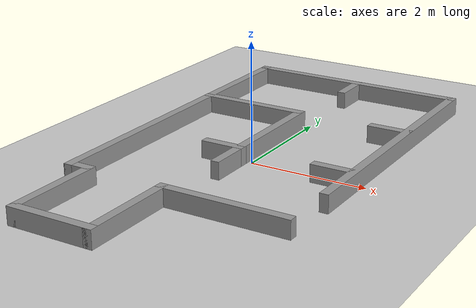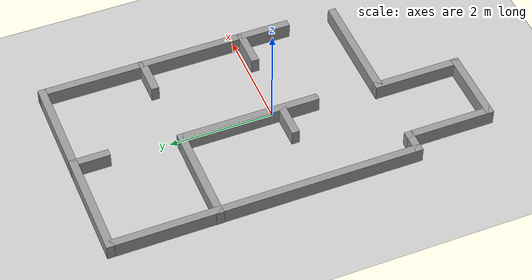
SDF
<sdf version="1.4">
  <world name="default">

    <scene>
      <ambient>0.4 0.4 0.4 1</ambient>
      <background>0.7 0.7 0.7 1</background>
      <shadows>true</shadows>
    </scene>

    <!-- A global light source -->
    <include>
      <uri>model://sun</uri>
    </include>

    <!-- A ground plane -->
    <include>
      <uri>model://ground_plane</uri>
    </include>

    <!-- maze -->
    <include>
      <uri>model://enclosed</uri>
    </include>

    <physics type="ode">
      <real_time_update_rate>1000.0</real_time_update_rate>
      <max_step_size>0.001</max_step_size>
      <real_time_factor>1</real_time_factor>
      <ode>
        <solver>
          <type>quick</type>
          <iters>150</iters>
          <precon_iters>0</precon_iters>
          <sor>1.400000</sor>
          <use_dynamic_moi_rescaling>1</use_dynamic_moi_rescaling>
        </solver>
        <constraints>
          <cfm>0.00001</cfm>
          <erp>0.2</erp>
          <contact_max_correcting_vel>2000.000000</contact_max_correcting_vel>
          <contact_surface_layer>0.01000</contact_surface_layer>
        </constraints>
      </ode>
    </physics>
  </world>

</sdf>

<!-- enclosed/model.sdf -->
<sdf version='1.6'>
  <model name='enclosed'>
    <pose frame=''>-0.0675 0.1065 0 0 -0 0</pose>
    <link name='Wall_0'>
      <collision name='Wall_0_Collision'>
        <geometry>
          <box>
            <size>6 0.15 0.3</size>
          </box>
        </geometry>
        <pose frame=''>0 0 0.15 0 -0 0</pose>
      </collision>
      <visual name='Wall_0_Visual'>
        <pose frame=''>0 0 0.15 0 -0 0</pose>
        <geometry>
          <box>
            <size>6 0.15 0.3</size>
          </box>
        </geometry>
        <material>
          <script>
            <uri>file://media/materials/scripts/gazebo.material</uri>
            <name>Gazebo/Grey</name>
          </script>
          <ambient>1 1 1 1</ambient>
        </material>
        <meta>
          <layer>0</layer>
        </meta>
      </visual>
      <pose frame=''>-1.9235 0.7995 0 0 -0 -1.5708</pose>
    </link>
    <link name='Wall_1'>
      <collision name='Wall_1_Collision'>
        <geometry>
          <box>
            <size>0.5 0.15 0.3</size>
          </box>
        </geometry>
        <pose frame=''>0 0 0.15 0 -0 0</pose>
      </collision>
      <visual name='Wall_1_Visual'>
        <pose frame=''>0 0 0.15 0 -0 0</pose>
        <geometry>
          <box>
            <size>0.5 0.15 0.3</size>
          </box>
        </geometry>
        <material>
          <script>
            <uri>file://media/materials/scripts/gazebo.material</uri>
            <name>Gazebo/Grey</name>
          </script>
          <ambient>1 1 1 1</ambient>
        </material>
        <meta>
          <layer>0</layer>
        </meta>
      </visual>
      <pose frame=''>-1.7485 -2.1255 0 0 -0 0</pose>
    </link>
    <link name='Wall_12'>
      <collision name='Wall_12_Collision'>
        <geometry>
          <box>
            <size>4 0.15 0.3</size>
          </box>
        </geometry>
        <pose frame=''>0 0 0.15 0 -0 0</pose>
      </collision>
      <visual name='Wall_12_Visual'>
        <pose frame=''>0 0 0.15 0 -0 0</pose>
        <geometry>
          <box>
            <size>4 0.15 0.3</size>
          </box>
        </geometry>
        <material>
          <script>
            <uri>file://media/materials/scripts/gazebo.material</uri>
            <name>Gazebo/Grey</name>
          </script>
          <ambient>1 1 1 1</ambient>
        </material>
        <meta>
          <layer>0</layer>
        </meta>
      </visual>
      <pose frame=''>0.0015 3.7245 0 0 -0 0</pose>
    </link>
    <link name='Wall_13'>
      <collision name='Wall_13_Collision'>
        <geometry>
          <box>
            <size>5 0.15 0.3</size>
          </box>
        </geometry>
        <pose frame=''>0 0 0.15 0 -0 0</pose>
      </collision>
      <visual name='Wall_13_Visual'>
        <pose frame=''>0 0 0.15 0 -0 0</pose>
        <geometry>
          <box>
            <size>5 0.15 0.3</size>
          </box>
        </geometry>
        <material>
          <script>
            <uri>file://media/materials/scripts/gazebo.material</uri>
            <name>Gazebo/Grey</name>
          </script>
          <ambient>1 1 1 1</ambient>
        </material>
        <meta>
          <layer>0</layer>
        </meta>
      </visual>
      <pose frame=''>1.9265 1.2995 0 0 -0 -1.5708</pose>
    </link>
    <link name='Wall_15'>
      <collision name='Wall_15_Collision'>
        <geometry>
          <box>
            <size>0.75 0.15 0.3</size>
          </box>
        </geometry>
        <pose frame=''>0 0 0.15 0 -0 0</pose>
      </collision>
      <visual name='Wall_15_Visual'>
        <pose frame=''>0 0 0.15 0 -0 0</pose>
        <geometry>
          <box>
            <size>0.75 0.15 0.3</size>
          </box>
        </geometry>
        <material>
          <script>
            <uri>file://media/materials/scripts/gazebo.material</uri>
            <name>Gazebo/Grey</name>
          </script>
          <ambient>1 1 1 1</ambient>
        </material>
        <meta>
          <layer>0</layer>
        </meta>
      </visual>
      <pose frame=''>0.0655 3.4255 0 0 -0 -1.5708</pose>
    </link>
    <link name='Wall_19'>
      <collision name='Wall_19_Collision'>
        <geometry>
          <box>
            <size>0.75 0.15 0.3</size>
          </box>
        </geometry>
        <pose frame=''>0 0 0.15 0 -0 0</pose>
      </collision>
      <visual name='Wall_19_Visual'>
        <pose frame=''>0 0 0.15 0 -0 0</pose>
        <geometry>
          <box>
            <size>0.75 0.15 0.3</size>
          </box>
        </geometry>
        <material>
          <script>
            <uri>file://media/materials/scripts/gazebo.material</uri>
            <name>Gazebo/Grey</name>
          </script>
          <ambient>1 1 1 1</ambient>
        </material>
        <meta>
          <layer>0</layer>
        </meta>
      </visual>
      <pose frame=''>1.6155 1.7545 0 0 -0 3.14159</pose>
    </link>
    <link name='Wall_21'>
      <collision name='Wall_21_Collision'>
        <geometry>
          <box>
            <size>0.75 0.15 0.3</size>
          </box>
        </geometry>
        <pose frame=''>0 0 0.15 0 -0 0</pose>
      </collision>
      <visual name='Wall_21_Visual'>
        <pose frame=''>0 0 0.15 0 -0 0</pose>
        <geometry>
          <box>
            <size>0.75 0.15 0.3</size>
          </box>
        </geometry>
        <material>
          <script>
            <uri>file://media/materials/scripts/gazebo.material</uri>
            <name>Gazebo/Grey</name>
          </script>
          <ambient>1 1 1 1</ambient>
        </material>
        <meta>
          <layer>0</layer>
        </meta>
      </visual>
      <pose frame=''>1.5955 -0.2375 0 0 -0 3.14159</pose>
    </link>
    <link name='Wall_23'>
      <collision name='Wall_23_Collision'>
        <geometry>
          <box>
            <size>2 0.15 0.3</size>
          </box>
        </geometry>
        <pose frame=''>0 0 0.15 0 -0 0</pose>
      </collision>
      <visual name='Wall_23_Visual'>
        <pose frame=''>0 0 0.15 0 -0 0</pose>
        <geometry>
          <box>
            <size>2 0.15 0.3</size>
          </box>
        </geometry>
        <material>
          <script>
            <uri>file://media/materials/scripts/gazebo.material</uri>
            <name>Gazebo/Grey</name>
          </script>
          <ambient>1 1 1 1</ambient>
        </material>
        <meta>
          <layer>0</layer>
        </meta>
      </visual>
      <pose frame=''>-1.0015 1.7135 0 0 -0 0</pose>
    </link>
    <link name='Wall_24'>
      <collision name='Wall_24_Collision'>
        <geometry>
          <box>
            <size>2.75 0.15 0.3</size>
          </box>
        </geometry>
        <pose frame=''>0 0 0.15 0 -0 0</pose>
      </collision>
      <visual name='Wall_24_Visual'>
        <pose frame=''>0 0 0.15 0 -0 0</pose>
        <geometry>
          <box>
            <size>2.75 0.15 0.3</size>
          </box>
        </geometry>
        <material>
          <script>
            <uri>file://media/materials/scripts/gazebo.material</uri>
            <name>Gazebo/Grey</name>
          </script>
          <ambient>1 1 1 1</ambient>
        </material>
        <meta>
          <layer>0</layer>
        </meta>
      </visual>
      <pose frame=''>-0.0765 0.4135 0 0 -0 -1.5708</pose>
    </link>
    <link name='Wall_26'>
      <collision name='Wall_26_Collision'>
        <geometry>
          <box>
            <size>0.75 0.15 0.3</size>
          </box>
        </geometry>
        <pose frame=''>0 0 0.15 0 -0 0</pose>
      </collision>
      <visual name='Wall_26_Visual'>
        <pose frame=''>0 0 0.15 0 -0 0</pose>
        <geometry>
          <box>
            <size>0.75 0.15 0.3</size>
          </box>
        </geometry>
        <material>
          <script>
            <uri>file://media/materials/scripts/gazebo.material</uri>
            <name>Gazebo/Grey</name>
          </script>
          <ambient>1 1 1 1</ambient>
        </material>
        <meta>
          <layer>0</layer>
        </meta>
      </visual>
      <pose frame=''>-0.3755 -0.2375 0 0 -0 3.14159</pose>
    </link>
    <link name='Wall_4'>
      <collision name='Wall_4_Collision'>
        <geometry>
          <box>
            <size>1.75 0.15 0.3</size>
          </box>
        </geometry>
        <pose frame=''>0 0 0.15 0 -0 0</pose>
      </collision>
      <visual name='Wall_4_Visual'>
        <pose frame=''>0 0 0.15 0 -0 0</pose>
        <geometry>
          <box>
            <size>1.75 0.15 0.3</size>
          </box>
        </geometry>
        <material>
          <script>
            <uri>file://media/materials/scripts/gazebo.material</uri>
            <name>Gazebo/Grey</name>
          </script>
          <ambient>1 1 1 1</ambient>
        </material>
        <meta>
          <layer>0</layer>
        </meta>
      </visual>
      <pose frame=''>-1.5735 -2.9255 0 0 -0 -1.5708</pose>
    </link>
    <link name='Wall_5'>
      <collision name='Wall_5_Collision'>
        <geometry>
          <box>
            <size>1.5 0.15 0.3</size>
          </box>
        </geometry>
        <pose frame=''>0 0 0.15 0 -0 0</pose>
      </collision>
      <visual name='Wall_5_Visual'>
        <pose frame=''>0 0 0.15 0 -0 0</pose>
        <geometry>
          <box>
            <size>1.5 0.15 0.3</size>
          </box>
        </geometry>
        <material>
          <script>
            <uri>file://media/materials/scripts/gazebo.material</uri>
            <name>Gazebo/Grey</name>
          </script>
          <ambient>1 1 1 1</ambient>
        </material>
        <meta>
          <layer>0</layer>
        </meta>
      </visual>
      <pose frame=''>-0.8985 -3.7255 0 0 -0 0</pose>
    </link>
    <link name='Wall_6'>
      <collision name='Wall_6_Collision'>
        <geometry>
          <box>
            <size>1.75 0.15 0.3</size>
          </box>
        </geometry>
        <pose frame=''>0 0 0.15 0 -0 0</pose>
      </collision>
      <visual name='Wall_6_Visual'>
        <pose frame=''>0 0 0.15 0 -0 0</pose>
        <geometry>
          <box>
            <size>1.75 0.15 0.3</size>
          </box>
        </geometry>
        <material>
          <script>
            <uri>file://media/materials/scripts/gazebo.material</uri>
            <name>Gazebo/Grey</name>
          </script>
          <ambient>1 1 1 1</ambient>
        </material>
        <meta>
          <layer>0</layer>
        </meta>
      </visual>
      <pose frame=''>-0.2235 -2.9255 0 0 -0 1.5708</pose>
    </link>
    <link name='Wall_7'>
      <collision name='Wall_7_Collision'>
        <geometry>
          <box>
            <size>2.25 0.15 0.3</size>
          </box>
        </geometry>
        <pose frame=''>0 0 0.15 0 -0 0</pose>
      </collision>
      <visual name='Wall_7_Visual'>
        <pose frame=''>0 0 0.15 0 -0 0</pose>
        <geometry>
          <box>
            <size>2.25 0.15 0.3</size>
          </box>
        </geometry>
        <material>
          <script>
            <uri>file://media/materials/scripts/gazebo.material</uri>
            <name>Gazebo/Grey</name>
          </script>
          <ambient>1 1 1 1</ambient>
        </material>
        <meta>
          <layer>0</layer>
        </meta>
      </visual>
      <pose frame=''>0.8265 -2.1255 0 0 -0 0</pose>
    </link>
    <static>1</static>
  </model>
</sdf>
